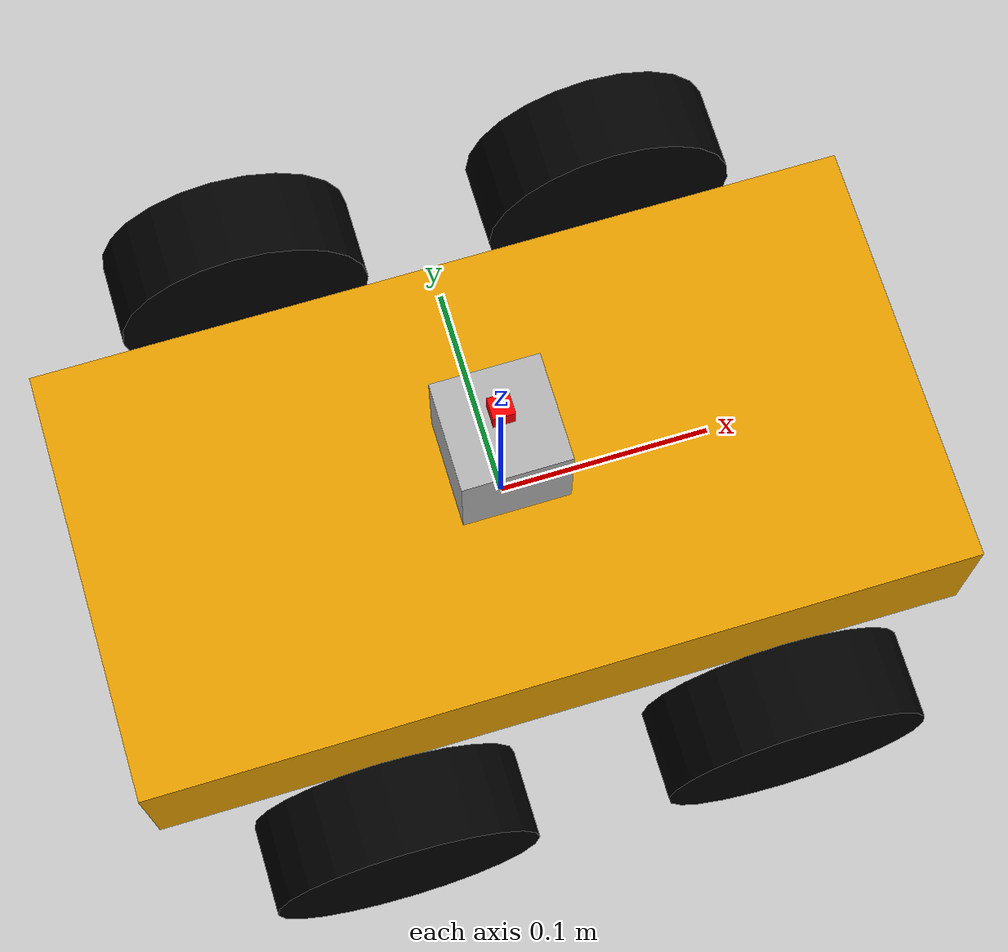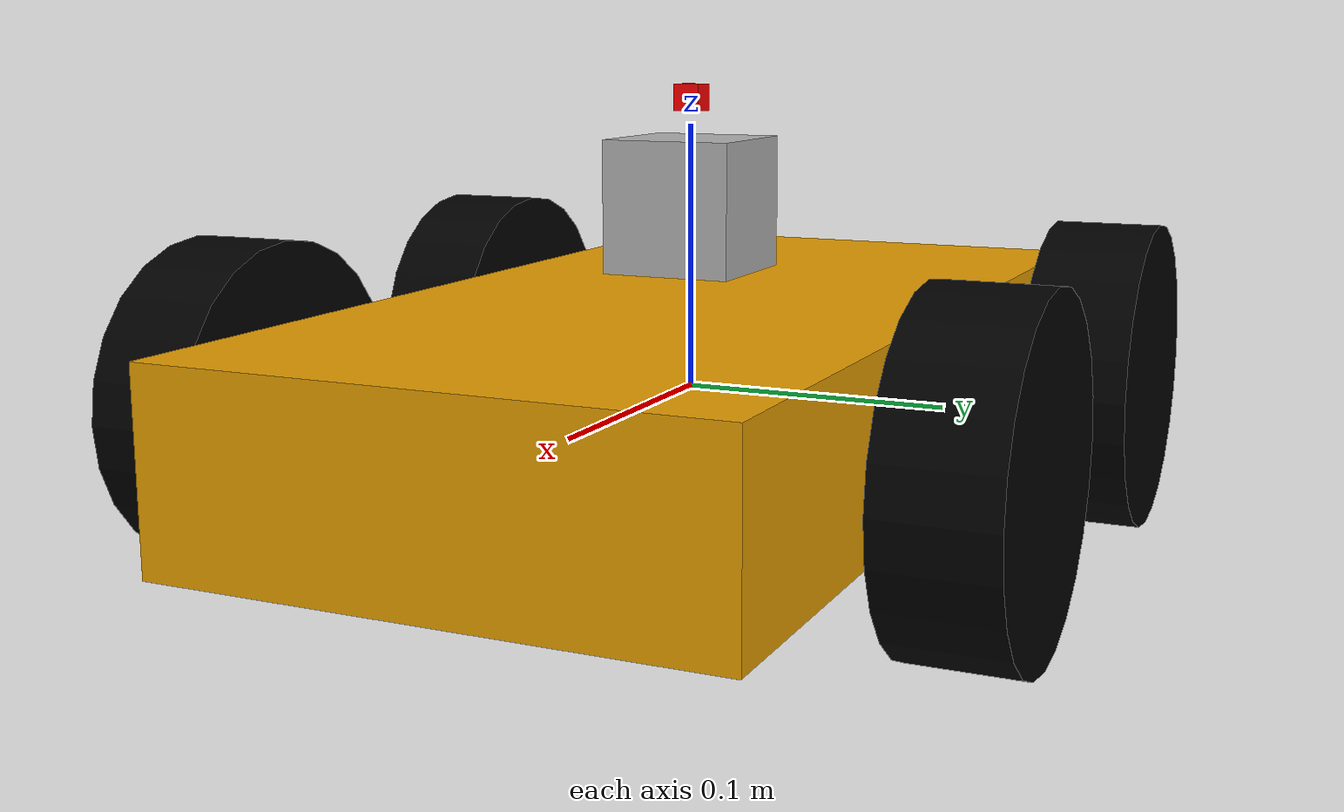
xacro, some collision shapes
<?xml version="1.0"?>

<robot xmlns:xacro="http://ros.org/wiki/xacro" name="robot_description">
<xacro:include filename="$(find robot_description)/urdf/robot_essentials.xacro" />
<xacro:include filename="$(find robot_description)/urdf/gazebo_essentials.xacro" />
 <!-- Import diffbot ros2_control description -->
  <xacro:include filename="$(find robot_description)/urdf/diffbot.ros2_control.xacro" />
  <xacro:arg name="use_sim" default="true" />

<xacro:include filename="$(find robot_description)/urdf/camera.xacro" />
<xacro:include filename="$(find robot_description)/urdf/hokuyo.xacro" />

  <!-- BASE_LINK -->
  <link name="base_link">
    <collision>
      <origin xyz="0 0 0.0" rpy="0 0 0" />
      <geometry>
        <box size="0.387 0.203 0.07" />
      </geometry>
    </collision>
    <inertial>
      <mass value="5.0" />
      <origin xyz="0 0 0" />
      <inertia ixx="1.391" ixy="0.004" ixz="0.0" iyy="6.853" iyz="0.0" izz="6.125" />
    </inertial>
    <visual>
      <origin xyz="0 0 0" rpy="0 0 0" />
      <geometry>
        <box size="0.387 0.203 0.07" />
      </geometry>
    </visual>
  </link>

<xacro:robot_wheel prefix="front_left" origin="0 0 0"/>

<xacro:robot_wheel prefix="front_right" origin="0 0 0"/>

<xacro:robot_wheel prefix="rear_left" origin="0 0 0"/>

<xacro:robot_wheel prefix="rear_right" origin="0 0 0"/>

<xacro:wheel_joint prefix="front_left" origin="0.09 0.14 0"/>

<xacro:wheel_joint prefix="front_right" origin="0.09 -0.14 0"/>

<xacro:wheel_joint prefix="rear_left" origin="-0.09 0.14 0"/>

<xacro:wheel_joint prefix="rear_right" origin="-0.09 -0.14 0"/>

<xacro:base_transmission prefix="front_left"/>

<xacro:base_transmission prefix="front_right"/>

<xacro:base_transmission prefix="rear_left"/>

<xacro:base_transmission prefix="rear_right"/>

<xacro:wheel_friction prefix="front_left"/>

<xacro:wheel_friction prefix="front_right"/>

<xacro:wheel_friction prefix="rear_left"/>

<xacro:wheel_friction prefix="rear_right"/>

<xacro:diffbot_ros2_control name="robot_ros2_control" prefix="" use_sim="$(arg use_sim)" />

<xacro:driver/>

<xacro:robot_camera/>

<xacro:robot_lidar/>

</robot>

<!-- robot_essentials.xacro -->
<robot xmlns:xacro="http://ros.org/wiki/xacro" name="robot_essentials" >
<xacro:property name="wheel_color" value="0.0 0.0 0.0 1"/> <!-- RGBA values -->

<xacro:macro name="robot_wheel" params="prefix origin">

<link name="${prefix}_wheel">
  <collision>
    <origin xyz="${origin}" rpy="1.5707963267949 0 0" />
    <geometry>
      <cylinder radius="0.06" length="0.04" />
    </geometry>
  </collision>

  <inertial>
    <origin xyz="-4.1867E-18 0.0068085 -1.65658661799998E-18" rpy="0 0 0" />
    <mass value="0.378" />
    <inertia ixx="0.00856502765719703" ixy="1.5074118157338E-19" ixz="-4.78150098725052E-19"
        iyy="0.013670640432096" iyz="-2.68136447099727E-19" izz="0.00856502765719703" />
  </inertial>

  <visual>
    <origin xyz="${origin}" rpy="1.5707963267949 0 0" />
    <geometry>
      <cylinder radius="0.06" length="0.04" />
      <!--mesh filename="package://robot_description/meshes/wheel.dae"/-->
    </geometry>
    <material name="wheel_material">
        <color rgba="${wheel_color}"/>
    </material>
  </visual>

</link>

<gazebo reference="${prefix}_wheel">
  <material>Gazebo/Black</material>
</gazebo>

</xacro:macro>

<xacro:macro name="wheel_joint" params="prefix origin">
  <joint name="${prefix}_wheel_joint" type="continuous">
    <axis xyz="0 1 0"/>
    <parent link ="base_link"/>
    <child link ="${prefix}_wheel"/>
    <origin rpy ="0 0 0" xyz= "${origin}"/>
  </joint>
</xacro:macro>

<xacro:macro name="base_transmission" params="prefix ">
  <transmission name="${prefix}_wheel_trans" type="SimpleTransmission">
    <type>transmission_interface/SimpleTransmission</type>
    <joint name="${prefix}_wheel_joint">
   	  <hardwareInterface>hardware_interface/VelocityJointInterface</hardwareInterface>
    </joint>
  </transmission>
</xacro:macro>

<xacro:macro name="wheel_friction" params="prefix ">
<gazebo reference="${prefix}_wheel">
<ode>
<mu1 value="0.80"/>
<mu2 value="0.2"/>
<kp value="1.0" />
<kd value="1.0" />
<fdir1 value="1 0 0"/>
<slip1>0</slip1>
<slip2>0</slip2>
</ode>
</gazebo>

</xacro:macro>

</robot>

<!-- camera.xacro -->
<robot xmlns:xacro="http://ros.org/wiki/xacro" name="camera" >
<xacro:property name="PI" value="3.1415926535897931" />
  <material name="red">
      <color rgba="1.0 0.0 0.0 1"/>
  </material>

  <material name="green_light">
      <color rgba="0.0 1.0 0.0 1"/>
  </material>

  <material name="green_dark">
    <color rgba="0.0 0.5 0.0 1"/>
  </material>

  <material name="blue">
      <color rgba="0.0 0.0 1.0 1"/>
  </material>

<xacro:macro name="robot_camera">

  <joint name="camera_joint" type="fixed">
    <axis xyz="1 0 0" />
    <origin xyz="0.0 0.0 0.04" rpy="0 0 0"/>
    <parent link="front_hokuyo"/>
    <child link="camera_link"/>
  </joint>

  <!-- Camera -->
  <link name="camera_link">
    <collision>
      <origin xyz="0 0 0" rpy="0 0 0"/>
      <geometry>
    <box size="0.01 0.01 0.01"/>
      </geometry>
    </collision>

    <visual>
      <origin xyz="0 0 0" rpy="0 0 0"/>
      <geometry>
     <box size="0.01 0.01 0.01"/>
      </geometry>
      <material name="red"/>
    </visual>

    <inertial>
      <mass value="1e-5" />
      <origin xyz="0 0 0" rpy="0 0 0"/>
      <inertia ixx="1e-6" ixy="0" ixz="0" iyy="1e-6" iyz="0" izz="1e-6" />
    </inertial>
  </link>

   <joint name="camera_depth_joint" type="fixed">
   <origin xyz="0 0 0" rpy="-1.57075 0 -1.57075"/>
    <child link="camera_depth_link"/>
    <parent link="camera_link"/>
  </joint>

   <link name="camera_depth_link">
    <collision>
      <origin xyz="0 0 0" rpy="0 0 0"/>
      <geometry>
    <box size="0.0001 0.0001 0.0001"/>
      </geometry>
    </collision>

    <visual>
      <origin xyz="0 0 0" rpy="0 0 0"/>
      <geometry>
     <box size="0.0001 0.0001 0.0001"/>
      </geometry>
      </visual>

    <inertial>
      <mass value="1e-5" />
      <origin xyz="0 0 0" rpy="0 0 0"/>
      <inertia ixx="1e-6" ixy="0" ixz="0" iyy="1e-6" iyz="0" izz="1e-6" />
    </inertial>
  </link>

</xacro:macro>

</robot>

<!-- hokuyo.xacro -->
<robot xmlns:xacro="http://ros.org/wiki/xacro" name="lidar" >

<xacro:macro name="robot_lidar">

<link name="front_hokuyo">
	<collision>
		<origin xyz="0 0 0" rpy="0 0 0"/>
		<geometry>
			<box size="0.05 0.05 0.05"/>
		</geometry>
	</collision>

	<inertial>
		<mass value="1e-5" />
		<origin xyz="0 0 0" rpy="0 0 0"/>
		<inertia ixx="1e-6" ixy="0" ixz="0" iyy="1e-6" iyz="0" izz="1e-6" />
	</inertial>

	<visual>
		<origin xyz="0 0 0" rpy="0 0 0"/>
		<geometry>
			<mesh filename="package://robot_description/meshes/hokuyo.dae"/>
		</geometry>
	</visual>
</link>

<joint name="front_hokuyo_joint" type="fixed">
	<axis xyz="0 1 0" />
		<origin xyz="0.0 0 0.07" rpy="0 0 0"/>
		<parent link="base_link"/>
		<child link="front_hokuyo"/>
</joint>

</xacro:macro>

</robot>
